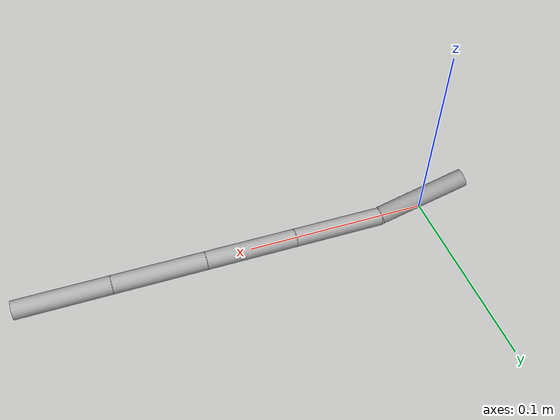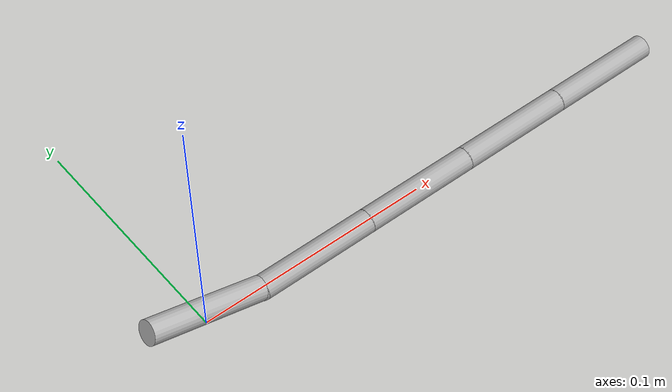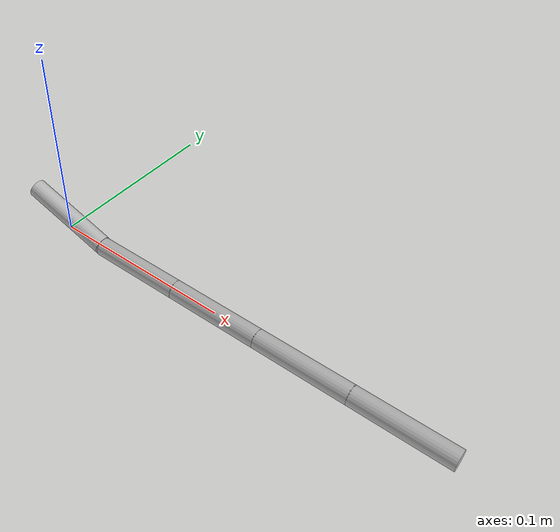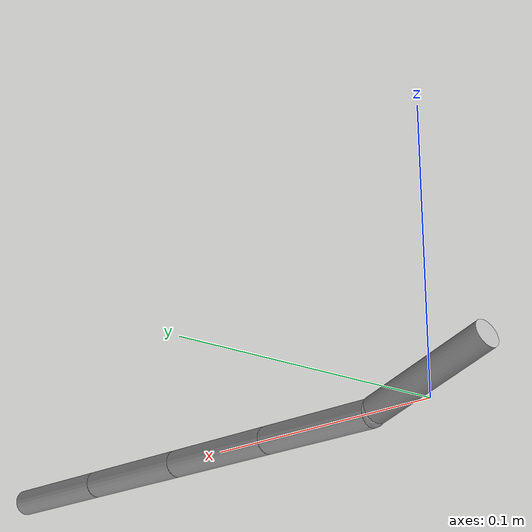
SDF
<?xml version="1.0" ?>
<sdf version='1.5'>
  <model name='cable'>
        <static>true</static>

<link name="link_01">

            <pose>0.0000000 0.000000 0.008000 0.000000 0.300000 0.000000</pose>
            <inertial>
                <pose>0.000000 0.000000 0.000000 0.000000 -0.000000 0.000000</pose>
                <mass>0.100000</mass>
                <inertia>
                    <ixx>0.010000</ixx>
                    <ixy>0.000000</ixy>
                    <ixz>0.000000</ixz>
                    <iyy>0.010000</iyy>
                    <iyz>0.000000</iyz>
                    <izz>0.010000</izz>
                </inertia>
            </inertial>

      <collision name='link_01_collision'>
        <pose>0.0000000 0.000000 0.000000 0.000000 1.570790 0.000000</pose>
        <geometry>
          <cylinder>
            <length>0.050000</length>
            <radius>0.005000</radius>
          </cylinder>
        </geometry>
      </collision>

            <visual name="link_01_vis">
                <pose>0.000000 0.000000 0.000000 0.000000 1.570790 0.000000</pose>
                <geometry>
                    <cylinder>
                        <length>0.050000</length>
                        <radius>0.005000</radius>
                    </cylinder>
                </geometry>
            </visual>
        </link>

<link name="sphere_01">
            <gravity>false</gravity>
            <pose>0.02500000 0.000000 0.000000 0.000000 -0.000000 0.000000</pose>
            <inertial>
                <pose>0.000000 0.000000 0.000000 0.000000 -0.000000 0.000000</pose>
                <mass>0.100000</mass>
                <inertia>
                    <ixx>0.010000</ixx>
                    <ixy>0.000000</ixy>
                    <ixz>0.000000</ixz>
                    <iyy>0.010000</iyy>
                    <iyz>0.000000</iyz>
                    <izz>0.010000</izz>
                </inertia>
            </inertial>
            <collision name="sphere_01_collision">
                <pose>0.000000 0.000000 0.000000 0.000000 -0.000000 0.000000</pose>
                <geometry>
                    <sphere>
                        <radius>0.005000</radius>
                    </sphere>
                </geometry>
            </collision>
            <visual name="sphere_01_vis">
                <pose>0.000000 0.000000 0.000000 0.000000 -0.000000 0.000000</pose>
                <geometry>
                    <sphere>
                        <radius>0.005000</radius>
                    </sphere>
                </geometry>
            </visual>
        </link>
<joint name="joint_01_1" type="revolute">
            <child>sphere_01</child>
            <parent>link_01</parent>
            <axis>
                <xyz>0.000000 1.000000 0.000000</xyz>
                <limit>
                    <lower>-1.570800</lower>
                    <upper>1.570800</upper>
                </limit>
                <dynamics />
            </axis>
        </joint>

<link name="link_02">

            <pose>0.0500000 0.000000 0.000000 0.000000 -0.000000 0.000000</pose>
            <inertial>
                <pose>0.000000 0.000000 0.000000 0.000000 -0.000000 0.000000</pose>
                <mass>0.100000</mass>
                <inertia>
                    <ixx>0.010000</ixx>
                    <ixy>0.000000</ixy>
                    <ixz>0.000000</ixz>
                    <iyy>0.010000</iyy>
                    <iyz>0.000000</iyz>
                    <izz>0.010000</izz>
                </inertia>
            </inertial>

      <collision name='link_02_collision'>
        <pose>0.0000000 0.000000 0.000000 0.000000 1.570790 0.000000</pose>
        <geometry>
          <cylinder>
            <length>0.050000</length>
            <radius>0.005000</radius>
          </cylinder>
        </geometry>
      </collision>

            <visual name="link_02_vis">
                <pose>0.000000 0.000000 0.000000 0.000000 1.570790 0.000000</pose>
                <geometry>
                    <cylinder>
                        <length>0.050000</length>
                        <radius>0.005000</radius>
                    </cylinder>
                </geometry>
            </visual>
        </link>

<joint name="joint_01_2" type="revolute">
            <child>link_02</child>
            <parent>sphere_01</parent>
			<pose>-0.025 0.0 0.0 0 0.0 0.0</pose>
            <axis>
                <xyz>0.000000 1.000000 0.000000</xyz>
                <limit>
                    <lower>-1.570800</lower>
                    <upper>1.570800</upper>
                </limit>
                <dynamics />
            </axis>
        </joint>

<link name="sphere_02">
            <gravity>false</gravity>
            <pose>0.07500000 0.000000 0.000000 0.000000 -0.000000 0.000000</pose>
            <inertial>
                <pose>0.000000 0.000000 0.000000 0.000000 -0.000000 0.000000</pose>
                <mass>0.100000</mass>
                <inertia>
                    <ixx>0.010000</ixx>
                    <ixy>0.000000</ixy>
                    <ixz>0.000000</ixz>
                    <iyy>0.010000</iyy>
                    <iyz>0.000000</iyz>
                    <izz>0.010000</izz>
                </inertia>
            </inertial>
            <collision name="sphere_02_collision">
                <pose>0.000000 0.000000 0.000000 0.000000 -0.000000 0.000000</pose>
                <geometry>
                    <sphere>
                        <radius>0.005000</radius>
                    </sphere>
                </geometry>
            </collision>
            <visual name="sphere_02_vis">
                <pose>0.000000 0.000000 0.000000 0.000000 -0.000000 0.000000</pose>
                <geometry>
                    <sphere>
                        <radius>0.005000</radius>
                    </sphere>
                </geometry>
            </visual>
        </link>
        <joint name="joint_02_1" type="revolute">
            <child>sphere_02</child>
            <parent>link_02</parent>
            <axis>
                <xyz>0.000000 1.000000 0.000000</xyz>
                <limit>
                    <lower>-1.570800</lower>
                    <upper>1.570800</upper>
                </limit>
                <dynamics />
            </axis>
        </joint>
<link name="link_03">

            <pose>0.1000000 0.000000 0.000000 0.000000 -0.000000 0.000000</pose>
            <inertial>
                <pose>0.000000 0.000000 0.000000 0.000000 -0.000000 0.000000</pose>
                <mass>0.100000</mass>
                <inertia>
                    <ixx>0.010000</ixx>
                    <ixy>0.000000</ixy>
                    <ixz>0.000000</ixz>
                    <iyy>0.010000</iyy>
                    <iyz>0.000000</iyz>
                    <izz>0.010000</izz>
                </inertia>
            </inertial>

      <collision name='link_03_collision'>
        <pose>0.0000000 0.000000 0.000000 0.000000 1.570790 0.000000</pose>
        <geometry>
          <cylinder>
            <length>0.050000</length>
            <radius>0.005000</radius>
          </cylinder>
        </geometry>
      </collision>

            <visual name="link_03_vis">
                <pose>0.000000 0.000000 0.000000 0.000000 1.570790 0.000000</pose>
                <geometry>
                    <cylinder>
                        <length>0.050000</length>
                        <radius>0.005000</radius>
                    </cylinder>
                </geometry>
            </visual>
        </link>

        <joint name="joint_02_2" type="revolute">
            <child>sphere_02</child>
            <parent>link_03</parent>
            <axis>
                <xyz>0.000000 1.000000 0.000000</xyz>
                <limit>
                    <lower>-1.570800</lower>
                    <upper>1.570800</upper>
                </limit>
                <dynamics />
            </axis>
        </joint>

<link name="sphere_03">
            <gravity>false</gravity>
            <pose>0.12500000 0.000000 0.000000 0.000000 -0.000000 0.000000</pose>
            <inertial>
                <pose>0.000000 0.000000 0.000000 0.000000 -0.000000 0.000000</pose>
                <mass>0.100000</mass>
                <inertia>
                    <ixx>0.010000</ixx>
                    <ixy>0.000000</ixy>
                    <ixz>0.000000</ixz>
                    <iyy>0.010000</iyy>
                    <iyz>0.000000</iyz>
                    <izz>0.010000</izz>
                </inertia>
            </inertial>
            <collision name="sphere_03_collision">
                <pose>0.000000 0.000000 0.000000 0.000000 -0.000000 0.000000</pose>
                <geometry>
                    <sphere>
                        <radius>0.005000</radius>
                    </sphere>
                </geometry>
            </collision>
            <visual name="sphere_03_vis">
                <pose>0.000000 0.000000 0.000000 0.000000 -0.000000 0.000000</pose>
                <geometry>
                    <sphere>
                        <radius>0.005000</radius>
                    </sphere>
                </geometry>
            </visual>
        </link>

<joint name="joint_03_1" type="revolute">
            <child>sphere_03</child>
            <parent>link_03</parent>
            <axis>
                <xyz>0.000000 1.000000 0.000000</xyz>
                <limit>
                    <lower>-1.570800</lower>
                    <upper>1.570800</upper>
                </limit>
                <dynamics />
            </axis>
        </joint>

<link name="link_04">

            <pose>0.1500000 0.000000 0.000000 0.000000 -0.000000 0.000000</pose>
            <inertial>
                <pose>0.000000 0.000000 0.000000 0.000000 -0.000000 0.000000</pose>
                <mass>0.100000</mass>
                <inertia>
                    <ixx>0.010000</ixx>
                    <ixy>0.000000</ixy>
                    <ixz>0.000000</ixz>
                    <iyy>0.010000</iyy>
                    <iyz>0.000000</iyz>
                    <izz>0.010000</izz>
                </inertia>
            </inertial>

      <collision name='link_04_collision'>
        <pose>0.0000000 0.000000 0.000000 0.000000 1.570790 0.000000</pose>
        <geometry>
          <cylinder>
            <length>0.050000</length>
            <radius>0.005000</radius>
          </cylinder>
        </geometry>
      </collision>

            <visual name="link_04_vis">
                <pose>0.000000 0.000000 0.000000 0.000000 1.570790 0.000000</pose>
                <geometry>
                    <cylinder>
                        <length>0.050000</length>
                        <radius>0.005000</radius>
                    </cylinder>
                </geometry>
            </visual>
        </link>

<joint name="joint_03_2" type="revolute">
            <child>sphere_03</child>
            <parent>link_04</parent>
            <axis>
                <xyz>0.000000 1.000000 0.000000</xyz>
                <limit>
                    <lower>-1.570800</lower>
                    <upper>1.570800</upper>
                </limit>
                <dynamics />
            </axis>
        </joint>

<link name="sphere_04">
            <gravity>false</gravity>
            <pose>0.17500000 0.000000 0.000000 0.000000 -0.000000 0.000000</pose>
            <inertial>
                <pose>0.000000 0.000000 0.000000 0.000000 -0.000000 0.000000</pose>
                <mass>0.100000</mass>
                <inertia>
                    <ixx>0.010000</ixx>
                    <ixy>0.000000</ixy>
                    <ixz>0.000000</ixz>
                    <iyy>0.010000</iyy>
                    <iyz>0.000000</iyz>
                    <izz>0.010000</izz>
                </inertia>
            </inertial>
            <collision name="sphere_04_collision">
                <pose>0.000000 0.000000 0.000000 0.000000 -0.000000 0.000000</pose>
                <geometry>
                    <sphere>
                        <radius>0.005000</radius>
                    </sphere>
                </geometry>
            </collision>
            <visual name="sphere_04_vis">
                <pose>0.000000 0.000000 0.000000 0.000000 -0.000000 0.000000</pose>
                <geometry>
                    <sphere>
                        <radius>0.005000</radius>
                    </sphere>
                </geometry>
            </visual>
        </link>

<joint name="joint_04_1" type="revolute">
            <child>sphere_04</child>
            <parent>link_04</parent>
            <axis>
                <xyz>0.000000 1.000000 0.000000</xyz>
                <limit>
                    <lower>-1.570800</lower>
                    <upper>1.570800</upper>
                </limit>
                <dynamics />
            </axis>
        </joint>

<link name="link_05">

            <pose>0.2000000 0.000000 0.000000 0.000000 -0.000000 0.000000</pose>
            <inertial>
                <pose>0.000000 0.000000 0.000000 0.000000 -0.000000 0.000000</pose>
                <mass>0.100000</mass>
                <inertia>
                    <ixx>0.010000</ixx>
                    <ixy>0.000000</ixy>
                    <ixz>0.000000</ixz>
                    <iyy>0.010000</iyy>
                    <iyz>0.000000</iyz>
                    <izz>0.010000</izz>
                </inertia>
            </inertial>

      <collision name='link_05_collision'>
        <pose>0.0000000 0.000000 0.000000 0.000000 1.570790 0.000000</pose>
        <geometry>
          <cylinder>
            <length>0.050000</length>
            <radius>0.005000</radius>
          </cylinder>
        </geometry>
      </collision>

            <visual name="link_05_vis">
                <pose>0.000000 0.000000 0.000000 0.000000 1.570790 0.000000</pose>
                <geometry>
                    <cylinder>
                        <length>0.050000</length>
                        <radius>0.005000</radius>
                    </cylinder>
                </geometry>
            </visual>
        </link>

<joint name="joint_04_2" type="revolute">
            <child>link_05</child>
            <parent>sphere_04</parent>
			<pose>-0.025 0 0 0 0 0</pose>
            <axis>
                <xyz>0.000000 1.000000 0.000000</xyz>
                <limit>
                    <lower>-1.570800</lower>
                    <upper>1.570800</upper>
                </limit>
                <dynamics />
            </axis>
        </joint>
</model>
</sdf>
<!-- vim: set noet fenc=utf-8 ff=unix sts=0 sw=4 ts=4 : -->
